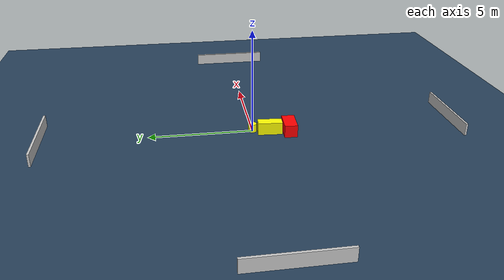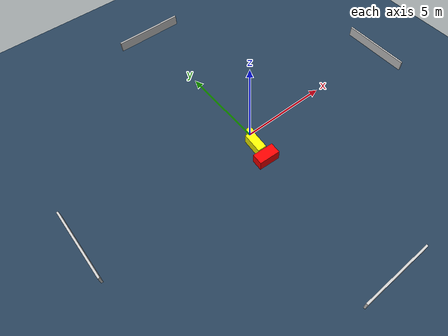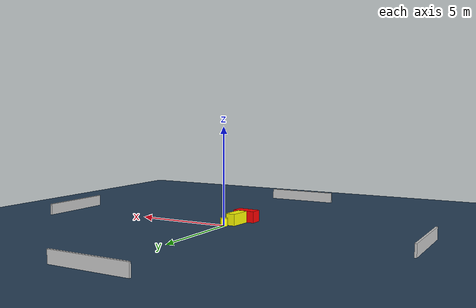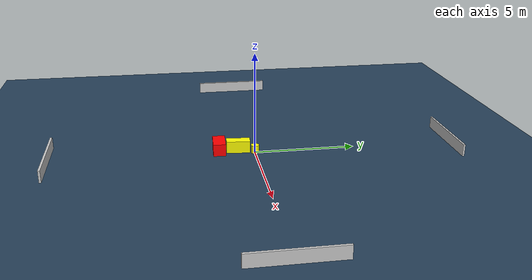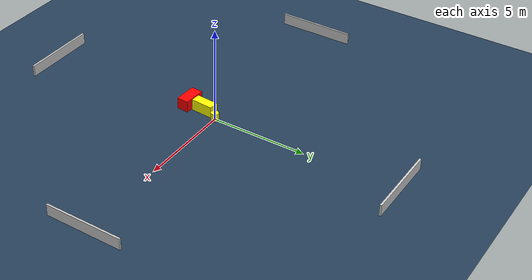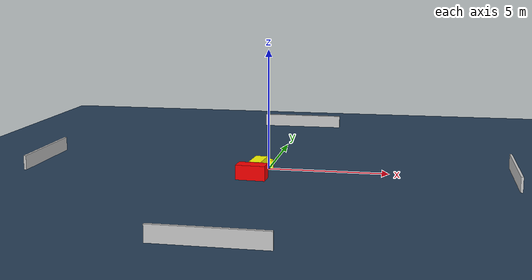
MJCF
<?xml version="1.0" ?>
<mujoco model="generated_environment">
  <option timestep="0.01" integrator="RK4" cone="elliptic"/>
  <default>
    <geom density="1"/>
  </default>
  <asset>
    <texture builtin="gradient" height="3072" name="skybox" rgb1="0.3 0.5 0.7" rgb2="0 0 0" type="skybox" width="512"/>
    <texture builtin="checker" height="300" name="groundplane" rgb1="0.2 0.3 0.4" rgb2="0.1 0.2 0.3" type="2d" width="300"/>
    <material name="groundplane" reflectance="0.2" texrepeat="5 5" texture="groundplane"/>
  </asset>
  <worldbody>
    <light dir="0 0 -1" directional="true" pos="0 0 1.5"/>
    <geom condim="3" friction="0.5 0.005 0.001" material="groundplane" name="floor" pos="0 0 0" size="0 0 0.05" type="plane"/>
    <body name="walls">
      <geom name="wall_1" condim="4" pos="-10.0 0.0 0.3" rgba="0.800000011920929 0.800000011920929 0.800000011920929 1.0" size="0.05 2.0 0.3" type="box"/>
      <geom name="wall_2" condim="4" pos="10.0 0.0 0.3" rgba="0.800000011920929 0.800000011920929 0.800000011920929 1.0" size="0.05 2.0 0.3" type="box"/>
      <geom name="wall_3" condim="4" pos="0.0 -10.0 0.3" rgba="0.800000011920929 0.800000011920929 0.800000011920929 1.0" size="2.0 0.05 0.3" type="box"/>
      <geom name="wall_4" condim="4" pos="0.0 10.0 0.3" rgba="0.800000011920929 0.800000011920929 0.800000011920929 1.0" size="2.0 0.05 0.3" type="box"/>
    </body>
    <body name="robot">
      <joint name="joint_x" type="slide" pos="0 0 0" axis="1 0 0"/>
      <joint name="joint_y" type="slide" pos="0 0 0" axis="0 1 0"/>
      <geom name="robot" type="cylinder" pos="0.0 0.0 0.2" size="0.2 0.2 0.0" mass="5.0" friction="1.0 0.005 0.0001" condim="4" rgba="1.0 1.0 0.0 1.0"/>
    </body>
    <body name="obstacle_1_movable">
      <geom name="obstacle_1_movable" condim="4" pos="-0.2796623492080907 -0.806466285461774 0.3" euler="0 0 86.11598414826616" friction="0.0 0.005 0.001" rgba="1.0 1.0 0.0 1.0" size="0.5826829932390967 0.24985978405491943 0.3" type="box" mass="0.1"/>
      <joint type="free"/>
    </body>
    <body name="obstacle_2_static">
      <geom name="obstacle_2_static" condim="4" pos="-0.36340152772572953 -1.7467473180560087 0.3" euler="0 0 177.04312390297193" friction="0.0 0.005 0.001" rgba="1.0 0.0 0.0 1.0" size="0.5959331788055433 0.30990550115166465 0.3" type="box"/>
    </body>
  </worldbody>
  <actuator>
    <motor name="actuator_x" joint="joint_x" gear="1" ctrlrange="-1 1"/>
    <motor name="actuator_y" joint="joint_y" gear="1" ctrlrange="-1 1"/>
  </actuator>
</mujoco>
